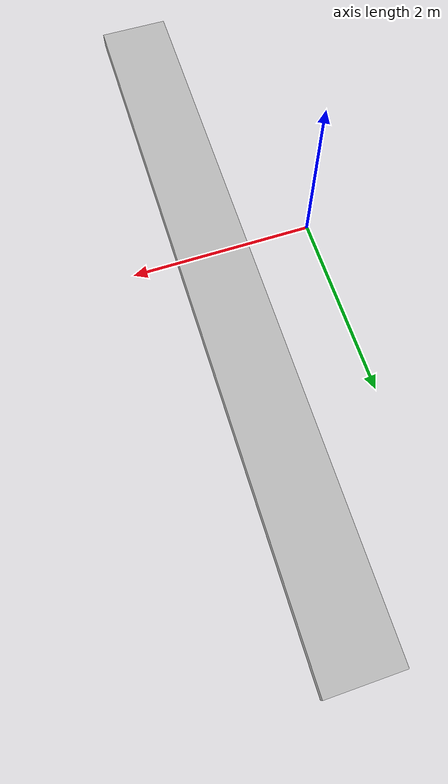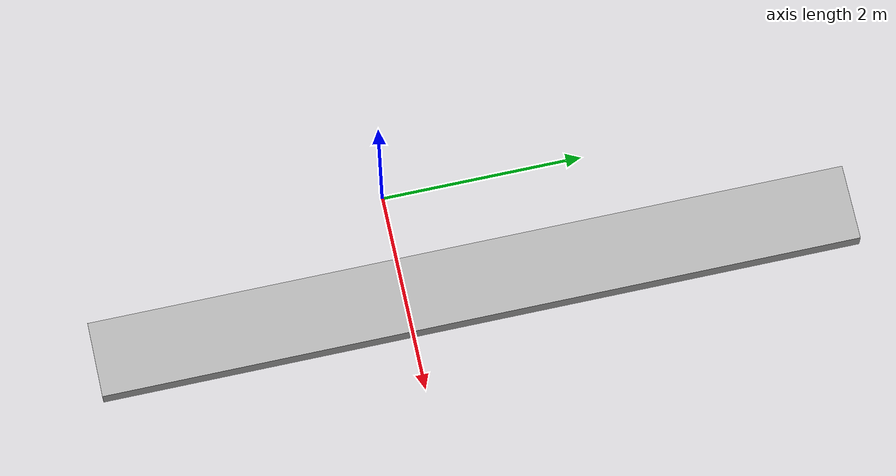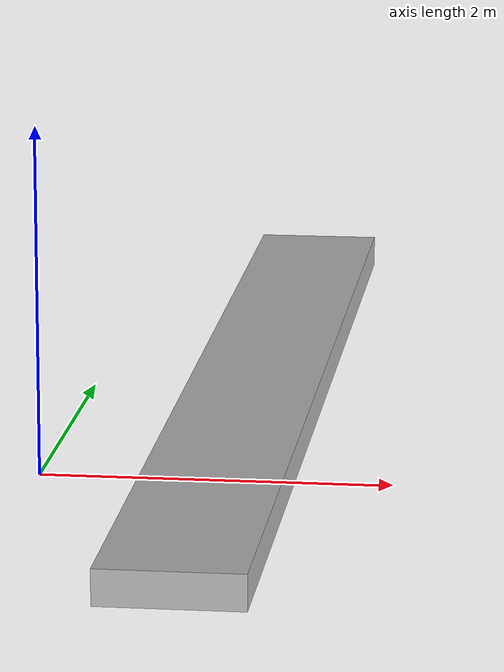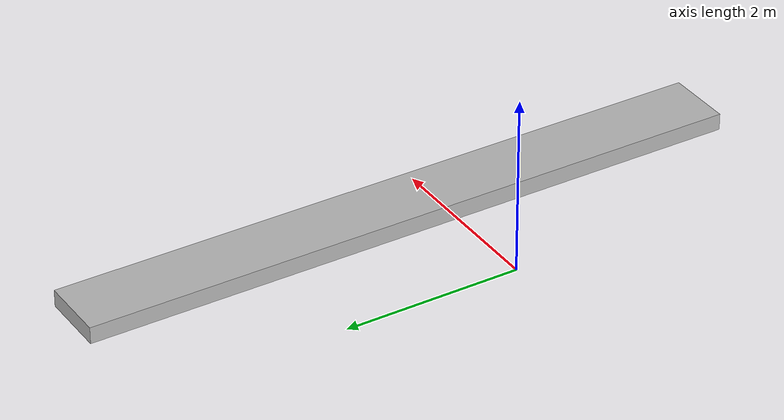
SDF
<?xml version="1.0" ?>
<sdf version="1.6">
    <model name="conveyor_belt_a">
      <!-- Fixed frame that can be used to refer to the belt's global pose -->
      <model name="conveyor_belt_fixed">
        <static>true</static>
        <pose>1.16 4.2 0.8 0 0 -1.57079</pose>
        <link name="link">
          <pose>0 0 0 0 0 0</pose>
        </link>
      </model>

      <!-- Moving component that extends and resets a prismatic joint -->
      <model name="conveyor_belt_moving">
        <allow_auto_disable>0</allow_auto_disable>
        <static>false</static>
        <pose>1.16 -4.12 0.35 0 0 -1.57079</pose>
        <link name="belt">
          <pose>-5 0 0 0 0 0</pose>
          <inertial>
            <inertia>
              <ixx>3.8185</ixx>
              <ixy>0</ixy>
              <ixz>0</ixz>
              <iyy>1781.5</iyy>
              <iyz>0</iyz>
              <izz>1784.72</izz>
            </inertia>
            <mass>100</mass>
          </inertial>
          <!--Uncomment for debugging -->
          <collision name="belt_collision">
            <geometry>
              <box>
                <size>7.5 0.75461 0.18862</size>
              </box>
            </geometry>
            <surface>
              <friction>
                <ode>
                  <mu>1.0</mu>
                  <mu2>1.0</mu2>
                </ode>
                <torsional>
                  <coefficient>1000.0</coefficient>
                  <patch_radius>0.1</patch_radius>
                </torsional>
              </friction>
            </surface>
          </collision>
        </link>
      </model>

    <!-- Moving component that extends and resets a prismatic joint -->
      <model name="conveyor_belt_visual">
        <allow_auto_disable>0</allow_auto_disable>
        <static>true</static>
        <pose>1.16 -4.12 0.35 0 0 -1.57079</pose>
        <link name="belt">
          <pose>-4.8 0 0 0 0 0</pose>
          <visual name="belt_visual">
            <geometry>
              <box>
                <size>7.5 0.75461 0.18862</size>
              </box>
            </geometry>
          </visual>
        </link>
      </model>

      <joint name="belt_joint" type="prismatic">
        <parent>conveyor_belt_fixed::link</parent>
        <child>conveyor_belt_moving::belt</child>
        <axis>
          <xyz>1 0 0</xyz>
          <limit>
            <lower>0</lower>
            <upper>1.0</upper>
          </limit>
        </axis>
      </joint>

      <joint name="belt_joint_visual" type="fixed">
        <parent>conveyor_belt_fixed::link</parent>
        <child>conveyor_belt_visual::belt</child>
      </joint>

      <plugin name="conveyor_belt_plugin" filename="libROSConveyorBeltPlugin.so">
        <robot_namespace>/ariac</robot_namespace>
        <population_rate_modifier_topic>/ariac/population/rate_modifier</population_rate_modifier_topic>
        <link>conveyor_belt_a::conveyor_belt_moving::belt</link>
        <power>0</power>
        <update_rate>10</update_rate>
      </plugin>
    </model>
</sdf>
